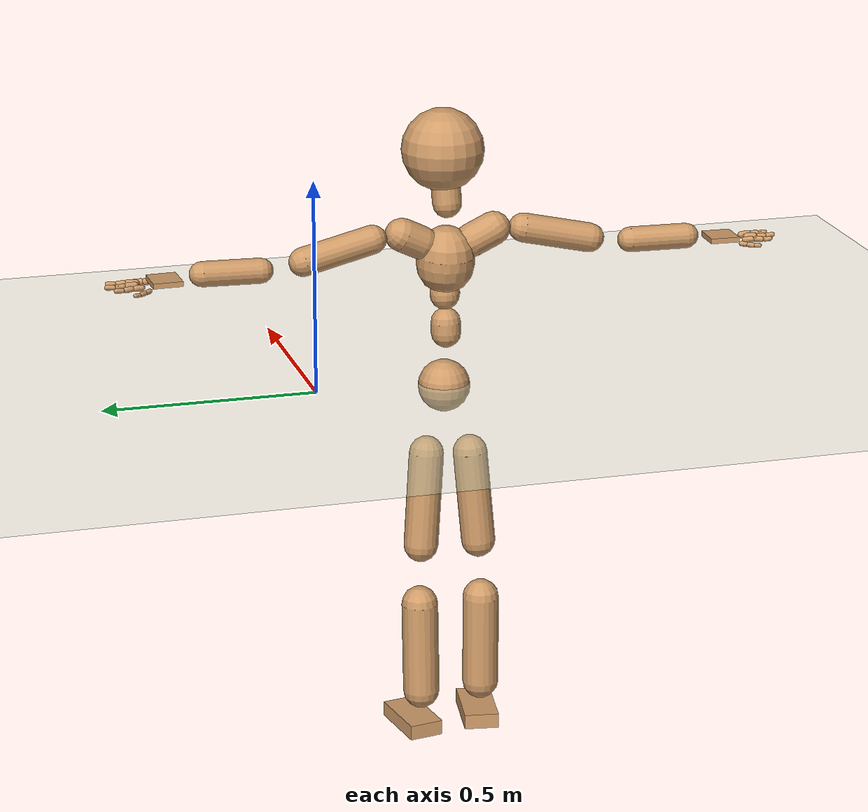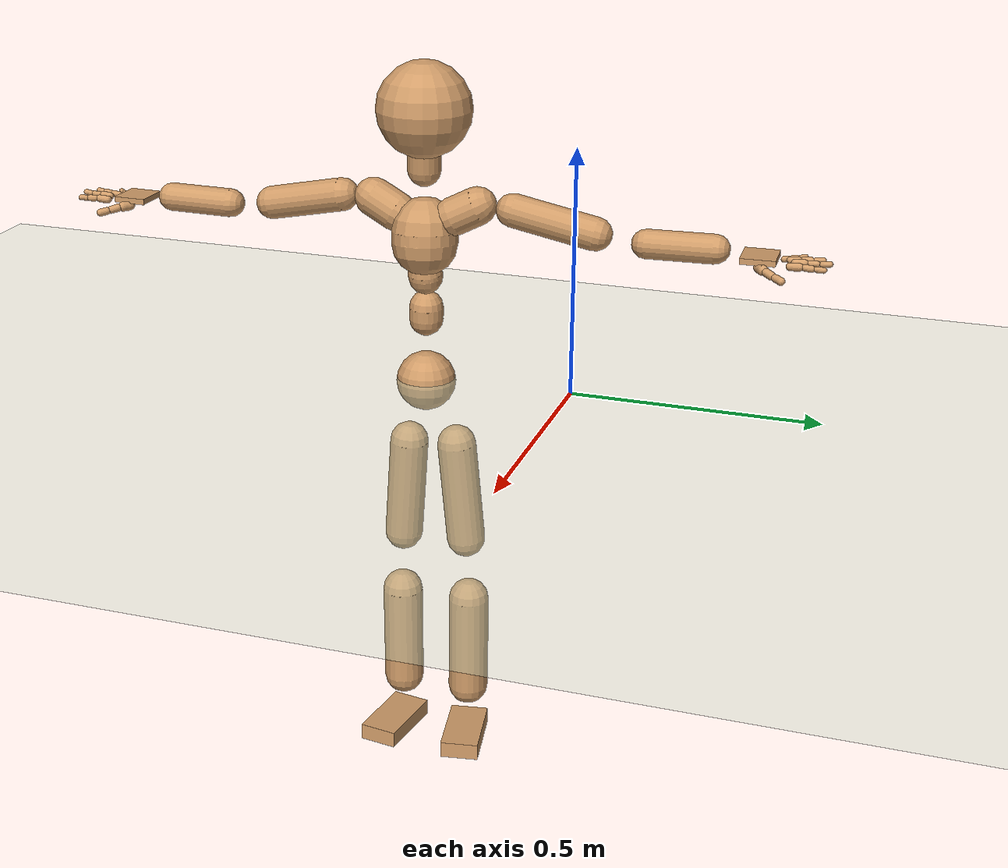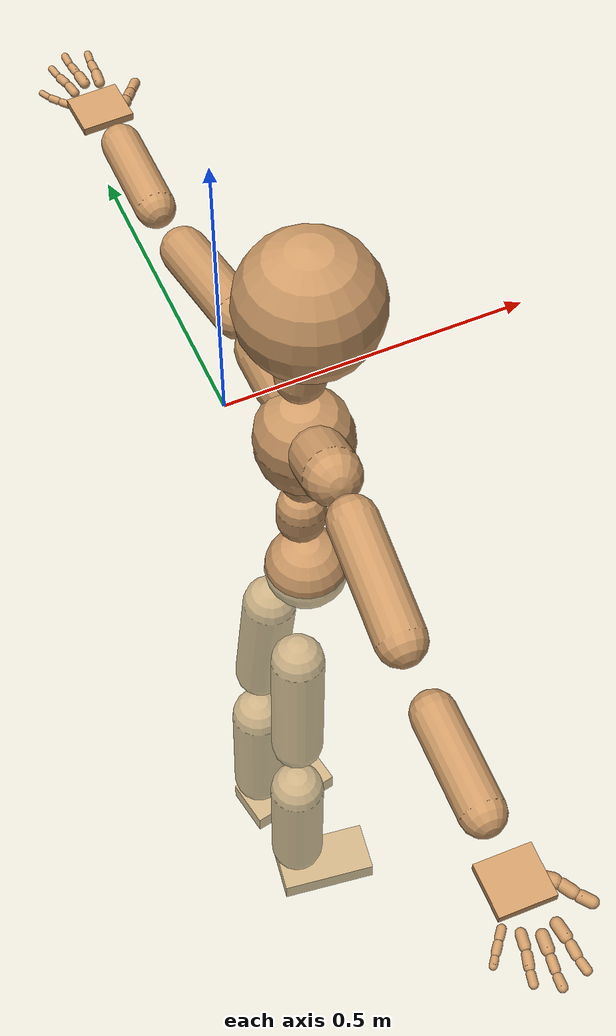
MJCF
<mujoco model="humanoid">
  <compiler coordinate="local" angle="radian"/>
  <default>
    <joint damping="0.0" armature="0.01" stiffness="0.0" limited="true"/>
    <geom conaffinity="1" condim="3" contype="7" margin="0.001" rgba="0.8 0.6 .4 1"/>
  </default>
  <asset>
    <texture type="skybox" builtin="gradient" rgb1=".4 .5 .6" rgb2="0 0 0" width="100" height="100"/>
    <texture builtin="flat" height="1278" mark="cross" markrgb="1 1 1" name="texgeom" random="0.01" rgb1="0.8 0.6 0.4" rgb2="0.8 0.6 0.4" type="cube" width="127"/>
    <texture builtin="checker" height="100" name="texplane" rgb1="0 0 0" rgb2="0.8 0.8 0.8" type="2d" width="100"/>
    <material name="MatPlane" reflectance="0.5" shininess="1" specular="1" texrepeat="60 60" texture="texplane"/>
    <material name="geom" texture="texgeom" texuniform="true"/>
  </asset>
  <worldbody>
    <light cutoff="100" diffuse="1 1 1" dir="-0 0 -1.3" directional="true" exponent="1" pos="0 0 1.3" specular=".1 .1 .1"/>
    <geom conaffinity="1" condim="3" name="floor" pos="0 0 0" rgba="0.8 0.9 0.8 1" size="100 100 .2" type="plane" material="MatPlane"/>
    <body name="Pelvis" pos="-0 -0.3068 -0.0101">
      <freejoint name="Pelvis"/>
      <geom type="sphere" contype="1" conaffinity="1" density="500" size="0.0611" pos="0.0000 0.0000 0.0000" name="Pelvis"/>
      <body name="L_Hip" pos="-0.0332 0.0476 -0.0758">
        <joint name="L_Hip_x" type="hinge" pos="0 0 0" axis="1 0 0" stiffness="800" damping="80" armature="0.02" range="-180.0000 180.0000"/>
        <joint name="L_Hip_y" type="hinge" pos="0 0 0" axis="0 1 0" stiffness="800" damping="80" armature="0.02" range="-180.0000 180.0000"/>
        <joint name="L_Hip_z" type="hinge" pos="0 0 0" axis="0 0 1" stiffness="800" damping="80" armature="0.02" range="-180.0000 180.0000"/>
        <geom type="capsule" contype="1" conaffinity="1" density="500" fromto="-0.0044 0.0056 -0.0745 -0.0177 0.0224 -0.2978" size="0.0405" name="L_Hip"/>
        <body name="L_Knee" pos="-0.0221 0.028 -0.3723">
          <joint name="L_Knee_x" type="hinge" pos="0 0 0" axis="1 0 0" stiffness="800" damping="80" armature="0.02" range="-180.0000 180.0000"/>
          <joint name="L_Knee_y" type="hinge" pos="0 0 0" axis="0 1 0" stiffness="800" damping="80" armature="0.02" range="-180.0000 180.0000"/>
          <joint name="L_Knee_z" type="hinge" pos="0 0 0" axis="0 0 1" stiffness="800" damping="80" armature="0.02" range="-180.0000 180.0000"/>
          <geom type="capsule" contype="1" conaffinity="1" density="500" fromto="-0.0016 -0.0009 -0.0734 -0.0066 -0.0034 -0.2937" size="0.043" name="L_Knee"/>
          <body name="L_Ankle" pos="-0.0082 -0.0043 -0.3671">
            <joint name="L_Ankle_x" type="hinge" pos="0 0 0" axis="1 0 0" stiffness="800" damping="80" armature="0.02" range="-180.0000 180.0000"/>
            <joint name="L_Ankle_y" type="hinge" pos="0 0 0" axis="0 1 0" stiffness="800" damping="80" armature="0.02" range="-180.0000 180.0000"/>
            <joint name="L_Ankle_z" type="hinge" pos="0 0 0" axis="0 0 1" stiffness="800" damping="80" armature="0.02" range="-180.0000 180.0000"/>
            <geom type="box" contype="1" conaffinity="1" density="500" pos="0.0505 0.0087 -0.0222" size="0.0781 0.0408 0.0178" quat="0.9964 0.0000 0.0000 0.0853" name="L_Ankle"/>
            <body name="L_Toe" pos="0.1011 0.0174 -0.0445">
              <joint name="L_Toe_x" type="hinge" pos="0 0 0" axis="1 0 0" stiffness="500" damping="50" armature="0.02" range="-180.0000 180.0000"/>
              <joint name="L_Toe_y" type="hinge" pos="0 0 0" axis="0 1 0" stiffness="500" damping="50" armature="0.02" range="-180.0000 180.0000"/>
              <joint name="L_Toe_z" type="hinge" pos="0 0 0" axis="0 0 1" stiffness="500" damping="50" armature="0.02" range="-180.0000 180.0000"/>
              <geom type="box" contype="1" conaffinity="1" density="500" pos="0.0000 0.0000 0.0235" size="0.0008 0.0021 0.001" quat="0.9957 0.0000 0.0000 0.0931" name="L_Toe"/>
            </body>
          </body>
        </body>
      </body>
      <body name="R_Hip" pos="-0.0346 -0.0466 -0.0833">
        <joint name="R_Hip_x" type="hinge" pos="0 0 0" axis="1 0 0" stiffness="800" damping="80" armature="0.02" range="-180.0000 180.0000"/>
        <joint name="R_Hip_y" type="hinge" pos="0 0 0" axis="0 1 0" stiffness="800" damping="80" armature="0.02" range="-180.0000 180.0000"/>
        <joint name="R_Hip_z" type="hinge" pos="0 0 0" axis="0 0 1" stiffness="800" damping="80" armature="0.02" range="-180.0000 180.0000"/>
        <geom type="capsule" contype="1" conaffinity="1" density="500" fromto="-0.0035 -0.0061 -0.0734 -0.0141 -0.0244 -0.2935" size="0.0403" name="R_Hip"/>
        <body name="R_Knee" pos="-0.0176 -0.0305 -0.3669">
          <joint name="R_Knee_x" type="hinge" pos="0 0 0" axis="1 0 0" stiffness="800" damping="80" armature="0.02" range="-180.0000 180.0000"/>
          <joint name="R_Knee_y" type="hinge" pos="0 0 0" axis="0 1 0" stiffness="800" damping="80" armature="0.02" range="-180.0000 180.0000"/>
          <joint name="R_Knee_z" type="hinge" pos="0 0 0" axis="0 0 1" stiffness="800" damping="80" armature="0.02" range="-180.0000 180.0000"/>
          <geom type="capsule" contype="1" conaffinity="1" density="500" fromto="-0.0006 0.0002 -0.0719 -0.0024 0.0006 -0.2874" size="0.0431" name="R_Knee"/>
          <body name="R_Ankle" pos="-0.003 0.0008 -0.3593">
            <joint name="R_Ankle_x" type="hinge" pos="0 0 0" axis="1 0 0" stiffness="800" damping="80" armature="0.02" range="-180.0000 180.0000"/>
            <joint name="R_Ankle_y" type="hinge" pos="0 0 0" axis="0 1 0" stiffness="800" damping="80" armature="0.02" range="-180.0000 180.0000"/>
            <joint name="R_Ankle_z" type="hinge" pos="0 0 0" axis="0 0 1" stiffness="800" damping="80" armature="0.02" range="-180.0000 180.0000"/>
            <geom type="box" contype="1" conaffinity="1" density="500" pos="0.0471 -0.0070 -0.0243" size="0.0781 0.0408 0.0178" quat="0.9973 0.0000 0.0000 -0.0741" name="R_Ankle"/>
            <body name="R_Toe" pos="0.0943 -0.0141 -0.0486">
              <joint name="R_Toe_x" type="hinge" pos="0 0 0" axis="1 0 0" stiffness="500" damping="50" armature="0.02" range="-180.0000 180.0000"/>
              <joint name="R_Toe_y" type="hinge" pos="0 0 0" axis="0 1 0" stiffness="500" damping="50" armature="0.02" range="-180.0000 180.0000"/>
              <joint name="R_Toe_z" type="hinge" pos="0 0 0" axis="0 0 1" stiffness="500" damping="50" armature="0.02" range="-180.0000 180.0000"/>
              <geom type="box" contype="1" conaffinity="1" density="500" pos="0.0000 0.0000 0.0256" size="0.0008 0.0021 0.001" quat="0.9981 0.0000 0.0000 -0.0624" name="R_Toe"/>
            </body>
          </body>
        </body>
      </body>
      <body name="Torso" pos="-0.0108 -0.0031 0.0822">
        <joint name="Torso_x" type="hinge" pos="0 0 0" axis="1 0 0" stiffness="1000" damping="100" armature="0.02" range="-180.0000 180.0000"/>
        <joint name="Torso_y" type="hinge" pos="0 0 0" axis="0 1 0" stiffness="1000" damping="100" armature="0.02" range="-180.0000 180.0000"/>
        <joint name="Torso_z" type="hinge" pos="0 0 0" axis="0 0 1" stiffness="1000" damping="100" armature="0.02" range="-180.0000 180.0000"/>
        <geom type="capsule" contype="1" conaffinity="1" density="500" fromto="0.0032 0.0016 0.0733 0.0022 0.0010 0.0489" size="0.0349" name="Torso"/>
        <body name="Spine" pos="0.0054 0.0026 0.1222">
          <joint name="Spine_x" type="hinge" pos="0 0 0" axis="1 0 0" stiffness="1000" damping="100" armature="0.02" range="-180.0000 180.0000"/>
          <joint name="Spine_y" type="hinge" pos="0 0 0" axis="0 1 0" stiffness="1000" damping="100" armature="0.02" range="-180.0000 180.0000"/>
          <joint name="Spine_z" type="hinge" pos="0 0 0" axis="0 0 1" stiffness="1000" damping="100" armature="0.02" range="-180.0000 180.0000"/>
          <geom type="capsule" contype="1" conaffinity="1" density="500" fromto="0.0044 -0.0003 0.0260 0.0029 -0.0002 0.0173" size="0.035" name="Spine"/>
          <body name="Chest" pos="0.0074 -0.0005 0.0433">
            <joint name="Chest_x" type="hinge" pos="0 0 0" axis="1 0 0" stiffness="1000" damping="100" armature="0.02" range="-180.0000 180.0000"/>
            <joint name="Chest_y" type="hinge" pos="0 0 0" axis="0 1 0" stiffness="1000" damping="100" armature="0.02" range="-180.0000 180.0000"/>
            <joint name="Chest_z" type="hinge" pos="0 0 0" axis="0 0 1" stiffness="1000" damping="100" armature="0.02" range="-180.0000 180.0000"/>
            <geom type="capsule" contype="1" conaffinity="1" density="500" fromto="-0.0057 -0.0013 0.0697 -0.0038 -0.0008 0.0465" size="0.0676" name="Chest"/>
            <body name="Neck" pos="-0.0135 -0.0044 0.1618">
              <joint name="Neck_x" type="hinge" pos="0 0 0" axis="1 0 0" stiffness="500" damping="50" armature="0.02" range="-180.0000 180.0000"/>
              <joint name="Neck_y" type="hinge" pos="0 0 0" axis="0 1 0" stiffness="500" damping="50" armature="0.02" range="-180.0000 180.0000"/>
              <joint name="Neck_z" type="hinge" pos="0 0 0" axis="0 0 1" stiffness="500" damping="50" armature="0.02" range="-180.0000 180.0000"/>
              <geom type="capsule" contype="1" conaffinity="1" density="500" fromto="0.0037 0.0015 0.0308 0.0150 0.0061 0.1231" size="0.0339" name="Neck"/>
              <body name="Head" pos="0.0187 0.0076 0.1539">
                <joint name="Head_x" type="hinge" pos="0 0 0" axis="1 0 0" stiffness="500" damping="50" armature="0.02" range="-180.0000 180.0000"/>
                <joint name="Head_y" type="hinge" pos="0 0 0" axis="0 1 0" stiffness="500" damping="50" armature="0.02" range="-180.0000 180.0000"/>
                <joint name="Head_z" type="hinge" pos="0 0 0" axis="0 0 1" stiffness="500" damping="50" armature="0.02" range="-180.0000 180.0000"/>
                <geom type="sphere" contype="1" conaffinity="1" density="500" size="0.0954" pos="0.0000 0.0000 0.0000" name="Head"/>
              </body>
            </body>
            <body name="L_Thorax" pos="-0.0056 0.0417 0.095">
              <joint name="L_Thorax_x" type="hinge" pos="0 0 0" axis="1 0 0" stiffness="500" damping="50" armature="0.02" range="-180.0000 180.0000"/>
              <joint name="L_Thorax_y" type="hinge" pos="0 0 0" axis="0 1 0" stiffness="500" damping="50" armature="0.02" range="-180.0000 180.0000"/>
              <joint name="L_Thorax_z" type="hinge" pos="0 0 0" axis="0 0 1" stiffness="500" damping="50" armature="0.02" range="-180.0000 180.0000"/>
              <geom type="capsule" contype="1" conaffinity="1" density="500" fromto="-0.0022 0.0160 0.0080 -0.0089 0.0641 0.0322" size="0.0387" name="L_Thorax"/>
              <body name="L_Shoulder" pos="-0.0112 0.0801 0.0402">
                <joint name="L_Shoulder_x" type="hinge" pos="0 0 0" axis="1 0 0" stiffness="500" damping="50" armature="0.02" range="-180.0000 180.0000"/>
                <joint name="L_Shoulder_y" type="hinge" pos="0 0 0" axis="0 1 0" stiffness="500" damping="50" armature="0.02" range="-180.0000 180.0000"/>
                <joint name="L_Shoulder_z" type="hinge" pos="0 0 0" axis="0 0 1" stiffness="500" damping="50" armature="0.02" range="-180.0000 180.0000"/>
                <geom type="capsule" contype="1" conaffinity="1" density="500" fromto="-0.0042 0.0548 -0.0120 -0.0169 0.2191 -0.0480" size="0.0336" name="L_Shoulder"/>
                <body name="L_Elbow" pos="-0.0211 0.2739 -0.0599">
                  <joint name="L_Elbow_x" type="hinge" pos="0 0 0" axis="1 0 0" stiffness="500" damping="50" armature="0.02" range="-720.0000 720.0000"/>
                  <joint name="L_Elbow_y" type="hinge" pos="0 0 0" axis="0 1 0" stiffness="500" damping="50" armature="0.02" range="-720.0000 720.0000"/>
                  <joint name="L_Elbow_z" type="hinge" pos="0 0 0" axis="0 0 1" stiffness="500" damping="50" armature="0.02" range="-720.0000 720.0000"/>
                  <geom type="capsule" contype="1" conaffinity="1" density="500" fromto="-0.0001 0.0449 0.0009 -0.0004 0.1797 0.0035" size="0.0289" name="L_Elbow"/>
                  <body name="L_Wrist" pos="-0.0005 0.2246 0.0044">
                    <joint name="L_Wrist_x" type="hinge" pos="0 0 0" axis="1 0 0" stiffness="300" damping="30" armature="0.02" range="-180.0000 180.0000"/>
                    <joint name="L_Wrist_y" type="hinge" pos="0 0 0" axis="0 1 0" stiffness="300" damping="30" armature="0.02" range="-180.0000 180.0000"/>
                    <joint name="L_Wrist_z" type="hinge" pos="0 0 0" axis="0 0 1" stiffness="300" damping="30" armature="0.02" range="-180.0000 180.0000"/>
                    <geom type="box" contype="1" conaffinity="1" density="500" pos="-0.0015 0.0405 -0.0084" size="0.0341 0.0381 0.0059" quat="0.7204 0.0000 0.0000 -0.6936" name="L_Wrist"/>
                    <body name="L_Index1" pos="0.0187 0.0949 -0.0156">
                      <joint name="L_Index1_x" type="hinge" pos="0 0 0" axis="1 0 0" stiffness="100" damping="10" armature="0.02" range="-180.0000 180.0000"/>
                      <joint name="L_Index1_y" type="hinge" pos="0 0 0" axis="0 1 0" stiffness="100" damping="10" armature="0.02" range="-180.0000 180.0000"/>
                      <joint name="L_Index1_z" type="hinge" pos="0 0 0" axis="0 0 1" stiffness="100" damping="10" armature="0.02" range="-180.0000 180.0000"/>
                      <geom type="capsule" contype="1" conaffinity="1" density="500" fromto="0.0005 0.0060 0.0004 0.0021 0.0238 0.0017" size="0.0078" name="L_Index1"/>
                      <body name="L_Index2" pos="0.0026 0.0298 0.0021">
                        <joint name="L_Index2_x" type="hinge" pos="0 0 0" axis="1 0 0" stiffness="100" damping="10" armature="0.02" range="-180.0000 180.0000"/>
                        <joint name="L_Index2_y" type="hinge" pos="0 0 0" axis="0 1 0" stiffness="100" damping="10" armature="0.02" range="-180.0000 180.0000"/>
                        <joint name="L_Index2_z" type="hinge" pos="0 0 0" axis="0 0 1" stiffness="100" damping="10" armature="0.02" range="-180.0000 180.0000"/>
                        <geom type="capsule" contype="1" conaffinity="1" density="500" fromto="0.0001 0.0043 -0.0003 0.0004 0.0170 -0.0011" size="0.0066" name="L_Index2"/>
                        <body name="L_Index3" pos="0.0005 0.0213 -0.0014">
                          <joint name="L_Index3_x" type="hinge" pos="0 0 0" axis="1 0 0" stiffness="100" damping="10" armature="0.02" range="-180.0000 180.0000"/>
                          <joint name="L_Index3_y" type="hinge" pos="0 0 0" axis="0 1 0" stiffness="100" damping="10" armature="0.02" range="-180.0000 180.0000"/>
                          <joint name="L_Index3_z" type="hinge" pos="0 0 0" axis="0 0 1" stiffness="100" damping="10" armature="0.02" range="-180.0000 180.0000"/>
                          <geom type="capsule" contype="1" conaffinity="1" density="500" fromto="0.0005 0.0047 0.0001 0.0020 0.0186 0.0005" size="0.0057" name="L_Index3"/>
                        </body>
                      </body>
                    </body>
                    <body name="L_Middle1" pos="-0.0012 0.1013 -0.0138">
                      <joint name="L_Middle1_x" type="hinge" pos="0 0 0" axis="1 0 0" stiffness="100" damping="10" armature="0.02" range="-180.0000 180.0000"/>
                      <joint name="L_Middle1_y" type="hinge" pos="0 0 0" axis="0 1 0" stiffness="100" damping="10" armature="0.02" range="-180.0000 180.0000"/>
                      <joint name="L_Middle1_z" type="hinge" pos="0 0 0" axis="0 0 1" stiffness="100" damping="10" armature="0.02" range="-180.0000 180.0000"/>
                      <geom type="capsule" contype="1" conaffinity="1" density="500" fromto="-0.0007 0.0057 0.0002 -0.0030 0.0227 0.0007" size="0.0078" name="L_Middle1"/>
                      <body name="L_Middle2" pos="-0.0037 0.0283 0.0008">
                        <joint name="L_Middle2_x" type="hinge" pos="0 0 0" axis="1 0 0" stiffness="100" damping="10" armature="0.02" range="-180.0000 180.0000"/>
                        <joint name="L_Middle2_y" type="hinge" pos="0 0 0" axis="0 1 0" stiffness="100" damping="10" armature="0.02" range="-180.0000 180.0000"/>
                        <joint name="L_Middle2_z" type="hinge" pos="0 0 0" axis="0 0 1" stiffness="100" damping="10" armature="0.02" range="-180.0000 180.0000"/>
                        <geom type="capsule" contype="1" conaffinity="1" density="500" fromto="-0.0007 0.0045 -0.0001 -0.0028 0.0178 -0.0003" size="0.0061" name="L_Middle2"/>
                        <body name="L_Middle3" pos="-0.0036 0.0223 -0.0004">
                          <joint name="L_Middle3_x" type="hinge" pos="0 0 0" axis="1 0 0" stiffness="100" damping="10" armature="0.02" range="-180.0000 180.0000"/>
                          <joint name="L_Middle3_y" type="hinge" pos="0 0 0" axis="0 1 0" stiffness="100" damping="10" armature="0.02" range="-180.0000 180.0000"/>
                          <joint name="L_Middle3_z" type="hinge" pos="0 0 0" axis="0 0 1" stiffness="100" damping="10" armature="0.02" range="-180.0000 180.0000"/>
                          <geom type="capsule" contype="1" conaffinity="1" density="500" fromto="-0.0003 0.0049 0.0003 -0.0012 0.0194 0.0013" size="0.0057" name="L_Middle3"/>
                        </body>
                      </body>
                    </body>
                    <body name="L_Pinky1" pos="-0.0354 0.0778 -0.0193">
                      <joint name="L_Pinky1_x" type="hinge" pos="0 0 0" axis="1 0 0" stiffness="100" damping="10" armature="0.02" range="-180.0000 180.0000"/>
                      <joint name="L_Pinky1_y" type="hinge" pos="0 0 0" axis="0 1 0" stiffness="100" damping="10" armature="0.02" range="-180.0000 180.0000"/>
                      <joint name="L_Pinky1_z" type="hinge" pos="0 0 0" axis="0 0 1" stiffness="100" damping="10" armature="0.02" range="-180.0000 180.0000"/>
                      <geom type="capsule" contype="1" conaffinity="1" density="500" fromto="-0.0022 0.0027 -0.0000 -0.0090 0.0108 -0.0001" size="0.0057" name="L_Pinky1"/>
                      <body name="L_Pinky2" pos="-0.0112 0.0135 -0.0001">
                        <joint name="L_Pinky2_x" type="hinge" pos="0 0 0" axis="1 0 0" stiffness="100" damping="10" armature="0.02" range="-180.0000 180.0000"/>
                        <joint name="L_Pinky2_y" type="hinge" pos="0 0 0" axis="0 1 0" stiffness="100" damping="10" armature="0.02" range="-180.0000 180.0000"/>
                        <joint name="L_Pinky2_z" type="hinge" pos="0 0 0" axis="0 0 1" stiffness="100" damping="10" armature="0.02" range="-180.0000 180.0000"/>
                        <geom type="capsule" contype="1" conaffinity="1" density="500" fromto="-0.0022 0.0028 -0.0001 -0.0090 0.0111 -0.0003" size="0.0056" name="L_Pinky2"/>
                        <body name="L_Pinky3" pos="-0.0112 0.0139 -0.0004">
                          <joint name="L_Pinky3_x" type="hinge" pos="0 0 0" axis="1 0 0" stiffness="100" damping="10" armature="0.02" range="-180.0000 180.0000"/>
                          <joint name="L_Pinky3_y" type="hinge" pos="0 0 0" axis="0 1 0" stiffness="100" damping="10" armature="0.02" range="-180.0000 180.0000"/>
                          <joint name="L_Pinky3_z" type="hinge" pos="0 0 0" axis="0 0 1" stiffness="100" damping="10" armature="0.02" range="-180.0000 180.0000"/>
                          <geom type="capsule" contype="1" conaffinity="1" density="500" fromto="-0.0018 0.0032 0.0003 -0.0074 0.0127 0.0013" size="0.0046" name="L_Pinky3"/>
                        </body>
                      </body>
                    </body>
                    <body name="L_Ring1" pos="-0.0209 0.09 -0.0154">
                      <joint name="L_Ring1_x" type="hinge" pos="0 0 0" axis="1 0 0" stiffness="100" damping="10" armature="0.02" range="-180.0000 180.0000"/>
                      <joint name="L_Ring1_y" type="hinge" pos="0 0 0" axis="0 1 0" stiffness="100" damping="10" armature="0.02" range="-180.0000 180.0000"/>
                      <joint name="L_Ring1_z" type="hinge" pos="0 0 0" axis="0 0 1" stiffness="100" damping="10" armature="0.02" range="-180.0000 180.0000"/>
                      <geom type="capsule" contype="1" conaffinity="1" density="500" fromto="-0.0010 0.0051 0.0003 -0.0040 0.0204 0.0012" size="0.0068" name="L_Ring1"/>
                      <body name="L_Ring2" pos="-0.005 0.0255 0.0015">
                        <joint name="L_Ring2_x" type="hinge" pos="0 0 0" axis="1 0 0" stiffness="100" damping="10" armature="0.02" range="-180.0000 180.0000"/>
                        <joint name="L_Ring2_y" type="hinge" pos="0 0 0" axis="0 1 0" stiffness="100" damping="10" armature="0.02" range="-180.0000 180.0000"/>
                        <joint name="L_Ring2_z" type="hinge" pos="0 0 0" axis="0 0 1" stiffness="100" damping="10" armature="0.02" range="-180.0000 180.0000"/>
                        <geom type="capsule" contype="1" conaffinity="1" density="500" fromto="-0.0013 0.0042 -0.0001 -0.0053 0.0170 -0.0005" size="0.0065" name="L_Ring2"/>
                        <body name="L_Ring3" pos="-0.0066 0.0212 -0.0006">
                          <joint name="L_Ring3_x" type="hinge" pos="0 0 0" axis="1 0 0" stiffness="100" damping="10" armature="0.02" range="-180.0000 180.0000"/>
                          <joint name="L_Ring3_y" type="hinge" pos="0 0 0" axis="0 1 0" stiffness="100" damping="10" armature="0.02" range="-180.0000 180.0000"/>
                          <joint name="L_Ring3_z" type="hinge" pos="0 0 0" axis="0 0 1" stiffness="100" damping="10" armature="0.02" range="-180.0000 180.0000"/>
                          <geom type="capsule" contype="1" conaffinity="1" density="500" fromto="-0.0009 0.0046 0.0003 -0.0037 0.0186 0.0011" size="0.0053" name="L_Ring3"/>
                        </body>
                      </body>
                    </body>
                    <body name="L_Thumb1" pos="0.0234 0.0406 -0.0202">
                      <joint name="L_Thumb1_x" type="hinge" pos="0 0 0" axis="1 0 0" stiffness="100" damping="10" armature="0.02" range="-180.0000 180.0000"/>
                      <joint name="L_Thumb1_y" type="hinge" pos="0 0 0" axis="0 1 0" stiffness="100" damping="10" armature="0.02" range="-180.0000 180.0000"/>
                      <joint name="L_Thumb1_z" type="hinge" pos="0 0 0" axis="0 0 1" stiffness="100" damping="10" armature="0.02" range="-180.0000 180.0000"/>
                      <geom type="capsule" contype="1" conaffinity="1" density="500" fromto="0.0044 0.0033 -0.0001 0.0175 0.0132 -0.0002" size="0.0101" name="L_Thumb1"/>
                      <body name="L_Thumb2" pos="0.0218 0.0165 -0.0003">
                        <joint name="L_Thumb2_x" type="hinge" pos="0 0 0" axis="1 0 0" stiffness="100" damping="10" armature="0.02" range="-180.0000 180.0000"/>
                        <joint name="L_Thumb2_y" type="hinge" pos="0 0 0" axis="0 1 0" stiffness="100" damping="10" armature="0.02" range="-180.0000 180.0000"/>
                        <joint name="L_Thumb2_z" type="hinge" pos="0 0 0" axis="0 0 1" stiffness="100" damping="10" armature="0.02" range="-180.0000 180.0000"/>
                        <geom type="capsule" contype="1" conaffinity="1" density="500" fromto="0.0027 0.0039 -0.0011 0.0108 0.0154 -0.0044" size="0.0081" name="L_Thumb2"/>
                        <body name="L_Thumb3" pos="0.0135 0.0193 -0.0054">
                          <joint name="L_Thumb3_x" type="hinge" pos="0 0 0" axis="1 0 0" stiffness="100" damping="10" armature="0.02" range="-180.0000 180.0000"/>
                          <joint name="L_Thumb3_y" type="hinge" pos="0 0 0" axis="0 1 0" stiffness="100" damping="10" armature="0.02" range="-180.0000 180.0000"/>
                          <joint name="L_Thumb3_z" type="hinge" pos="0 0 0" axis="0 0 1" stiffness="100" damping="10" armature="0.02" range="-180.0000 180.0000"/>
                          <geom type="capsule" contype="1" conaffinity="1" density="500" fromto="0.0031 0.0043 -0.0007 0.0124 0.0170 -0.0028" size="0.0077" name="L_Thumb3"/>
                        </body>
                      </body>
                    </body>
                  </body>
                </body>
              </body>
            </body>
            <body name="R_Thorax" pos="-0.0093 -0.0436 0.0917">
              <joint name="R_Thorax_x" type="hinge" pos="0 0 0" axis="1 0 0" stiffness="500" damping="50" armature="0.02" range="-180.0000 180.0000"/>
              <joint name="R_Thorax_y" type="hinge" pos="0 0 0" axis="0 1 0" stiffness="500" damping="50" armature="0.02" range="-180.0000 180.0000"/>
              <joint name="R_Thorax_z" type="hinge" pos="0 0 0" axis="0 0 1" stiffness="500" damping="50" armature="0.02" range="-180.0000 180.0000"/>
              <geom type="capsule" contype="1" conaffinity="1" density="500" fromto="-0.0015 -0.0172 0.0087 -0.0061 -0.0686 0.0348" size="0.0393" name="R_Thorax"/>
              <body name="R_Shoulder" pos="-0.0076 -0.0858 0.0435">
                <joint name="R_Shoulder_x" type="hinge" pos="0 0 0" axis="1 0 0" stiffness="500" damping="50" armature="0.02" range="-180.0000 180.0000"/>
                <joint name="R_Shoulder_y" type="hinge" pos="0 0 0" axis="0 1 0" stiffness="500" damping="50" armature="0.02" range="-180.0000 180.0000"/>
                <joint name="R_Shoulder_z" type="hinge" pos="0 0 0" axis="0 0 1" stiffness="500" damping="50" armature="0.02" range="-180.0000 180.0000"/>
                <geom type="capsule" contype="1" conaffinity="1" density="500" fromto="-0.0029 -0.0527 -0.0112 -0.0117 -0.2109 -0.0448" size="0.0339" name="R_Shoulder"/>
                <body name="R_Elbow" pos="-0.0146 -0.2636 -0.0559">
                  <joint name="R_Elbow_x" type="hinge" pos="0 0 0" axis="1 0 0" stiffness="500" damping="50" armature="0.02" range="-720.0000 720.0000"/>
                  <joint name="R_Elbow_y" type="hinge" pos="0 0 0" axis="0 1 0" stiffness="500" damping="50" armature="0.02" range="-720.0000 720.0000"/>
                  <joint name="R_Elbow_z" type="hinge" pos="0 0 0" axis="0 0 1" stiffness="500" damping="50" armature="0.02" range="-720.0000 720.0000"/>
                  <geom type="capsule" contype="1" conaffinity="1" density="500" fromto="-0.0016 -0.0453 -0.0000 -0.0062 -0.1811 -0.0001" size="0.0292" name="R_Elbow"/>
                  <body name="R_Wrist" pos="-0.0078 -0.2263 -0.0001">
                    <joint name="R_Wrist_x" type="hinge" pos="0 0 0" axis="1 0 0" stiffness="300" damping="30" armature="0.02" range="-180.0000 180.0000"/>
                    <joint name="R_Wrist_y" type="hinge" pos="0 0 0" axis="0 1 0" stiffness="300" damping="30" armature="0.02" range="-180.0000 180.0000"/>
                    <joint name="R_Wrist_z" type="hinge" pos="0 0 0" axis="0 0 1" stiffness="300" damping="30" armature="0.02" range="-180.0000 180.0000"/>
                    <geom type="box" contype="1" conaffinity="1" density="500" pos="-0.0011 -0.0399 -0.0082" size="0.0341 0.0359 0.006" quat="0.7167 0.0000 0.0000 0.6973" name="R_Wrist"/>
                    <body name="R_Index1" pos="0.0196 -0.0938 -0.0151">
                      <joint name="R_Index1_x" type="hinge" pos="0 0 0" axis="1 0 0" stiffness="100" damping="10" armature="0.02" range="-180.0000 180.0000"/>
                      <joint name="R_Index1_y" type="hinge" pos="0 0 0" axis="0 1 0" stiffness="100" damping="10" armature="0.02" range="-180.0000 180.0000"/>
                      <joint name="R_Index1_z" type="hinge" pos="0 0 0" axis="0 0 1" stiffness="100" damping="10" armature="0.02" range="-180.0000 180.0000"/>
                      <geom type="capsule" contype="1" conaffinity="1" density="500" fromto="0.0005 -0.0060 0.0004 0.0021 -0.0238 0.0017" size="0.0078" name="R_Index1"/>
                      <body name="R_Index2" pos="0.0026 -0.0298 0.0021">
                        <joint name="R_Index2_x" type="hinge" pos="0 0 0" axis="1 0 0" stiffness="100" damping="10" armature="0.02" range="-180.0000 180.0000"/>
                        <joint name="R_Index2_y" type="hinge" pos="0 0 0" axis="0 1 0" stiffness="100" damping="10" armature="0.02" range="-180.0000 180.0000"/>
                        <joint name="R_Index2_z" type="hinge" pos="0 0 0" axis="0 0 1" stiffness="100" damping="10" armature="0.02" range="-180.0000 180.0000"/>
                        <geom type="capsule" contype="1" conaffinity="1" density="500" fromto="0.0001 -0.0043 -0.0003 0.0004 -0.0170 -0.0011" size="0.0066" name="R_Index2"/>
                        <body name="R_Index3" pos="0.0005 -0.0213 -0.0014">
                          <joint name="R_Index3_x" type="hinge" pos="0 0 0" axis="1 0 0" stiffness="100" damping="10" armature="0.02" range="-180.0000 180.0000"/>
                          <joint name="R_Index3_y" type="hinge" pos="0 0 0" axis="0 1 0" stiffness="100" damping="10" armature="0.02" range="-180.0000 180.0000"/>
                          <joint name="R_Index3_z" type="hinge" pos="0 0 0" axis="0 0 1" stiffness="100" damping="10" armature="0.02" range="-180.0000 180.0000"/>
                          <geom type="capsule" contype="1" conaffinity="1" density="500" fromto="0.0005 -0.0039 0.0001 0.0020 -0.0154 0.0005" size="0.0059" name="R_Index3"/>
                        </body>
                      </body>
                    </body>
                    <body name="R_Middle1" pos="-0.0003 -0.1002 -0.0133">
                      <joint name="R_Middle1_x" type="hinge" pos="0 0 0" axis="1 0 0" stiffness="100" damping="10" armature="0.02" range="-180.0000 180.0000"/>
                      <joint name="R_Middle1_y" type="hinge" pos="0 0 0" axis="0 1 0" stiffness="100" damping="10" armature="0.02" range="-180.0000 180.0000"/>
                      <joint name="R_Middle1_z" type="hinge" pos="0 0 0" axis="0 0 1" stiffness="100" damping="10" armature="0.02" range="-180.0000 180.0000"/>
                      <geom type="capsule" contype="1" conaffinity="1" density="500" fromto="-0.0007 -0.0057 0.0002 -0.0030 -0.0227 0.0007" size="0.0078" name="R_Middle1"/>
                      <body name="R_Middle2" pos="-0.0037 -0.0283 0.0008">
                        <joint name="R_Middle2_x" type="hinge" pos="0 0 0" axis="1 0 0" stiffness="100" damping="10" armature="0.02" range="-180.0000 180.0000"/>
                        <joint name="R_Middle2_y" type="hinge" pos="0 0 0" axis="0 1 0" stiffness="100" damping="10" armature="0.02" range="-180.0000 180.0000"/>
                        <joint name="R_Middle2_z" type="hinge" pos="0 0 0" axis="0 0 1" stiffness="100" damping="10" armature="0.02" range="-180.0000 180.0000"/>
                        <geom type="capsule" contype="1" conaffinity="1" density="500" fromto="-0.0007 -0.0045 -0.0001 -0.0028 -0.0178 -0.0003" size="0.0061" name="R_Middle2"/>
                        <body name="R_Middle3" pos="-0.0036 -0.0223 -0.0004">
                          <joint name="R_Middle3_x" type="hinge" pos="0 0 0" axis="1 0 0" stiffness="100" damping="10" armature="0.02" range="-180.0000 180.0000"/>
                          <joint name="R_Middle3_y" type="hinge" pos="0 0 0" axis="0 1 0" stiffness="100" damping="10" armature="0.02" range="-180.0000 180.0000"/>
                          <joint name="R_Middle3_z" type="hinge" pos="0 0 0" axis="0 0 1" stiffness="100" damping="10" armature="0.02" range="-180.0000 180.0000"/>
                          <geom type="capsule" contype="1" conaffinity="1" density="500" fromto="-0.0003 -0.0041 0.0003 -0.0012 -0.0162 0.0013" size="0.006" name="R_Middle3"/>
                        </body>
                      </body>
                    </body>
                    <body name="R_Pinky1" pos="-0.0345 -0.0768 -0.0188">
                      <joint name="R_Pinky1_x" type="hinge" pos="0 0 0" axis="1 0 0" stiffness="100" damping="10" armature="0.02" range="-180.0000 180.0000"/>
                      <joint name="R_Pinky1_y" type="hinge" pos="0 0 0" axis="0 1 0" stiffness="100" damping="10" armature="0.02" range="-180.0000 180.0000"/>
                      <joint name="R_Pinky1_z" type="hinge" pos="0 0 0" axis="0 0 1" stiffness="100" damping="10" armature="0.02" range="-180.0000 180.0000"/>
                      <geom type="capsule" contype="1" conaffinity="1" density="500" fromto="-0.0022 -0.0027 -0.0000 -0.0090 -0.0108 -0.0001" size="0.0057" name="R_Pinky1"/>
                      <body name="R_Pinky2" pos="-0.0112 -0.0135 -0.0001">
                        <joint name="R_Pinky2_x" type="hinge" pos="0 0 0" axis="1 0 0" stiffness="100" damping="10" armature="0.02" range="-180.0000 180.0000"/>
                        <joint name="R_Pinky2_y" type="hinge" pos="0 0 0" axis="0 1 0" stiffness="100" damping="10" armature="0.02" range="-180.0000 180.0000"/>
                        <joint name="R_Pinky2_z" type="hinge" pos="0 0 0" axis="0 0 1" stiffness="100" damping="10" armature="0.02" range="-180.0000 180.0000"/>
                        <geom type="capsule" contype="1" conaffinity="1" density="500" fromto="-0.0022 -0.0028 -0.0001 -0.0090 -0.0111 -0.0003" size="0.0056" name="R_Pinky2"/>
                        <body name="R_Pinky3" pos="-0.0112 -0.0139 -0.0004">
                          <joint name="R_Pinky3_x" type="hinge" pos="0 0 0" axis="1 0 0" stiffness="100" damping="10" armature="0.02" range="-180.0000 180.0000"/>
                          <joint name="R_Pinky3_y" type="hinge" pos="0 0 0" axis="0 1 0" stiffness="100" damping="10" armature="0.02" range="-180.0000 180.0000"/>
                          <joint name="R_Pinky3_z" type="hinge" pos="0 0 0" axis="0 0 1" stiffness="100" damping="10" armature="0.02" range="-180.0000 180.0000"/>
                          <geom type="capsule" contype="1" conaffinity="1" density="500" fromto="-0.0018 -0.0024 0.0003 -0.0074 -0.0095 0.0013" size="0.0048" name="R_Pinky3"/>
                        </body>
                      </body>
                    </body>
                    <body name="R_Ring1" pos="-0.02 -0.0889 -0.0149">
                      <joint name="R_Ring1_x" type="hinge" pos="0 0 0" axis="1 0 0" stiffness="100" damping="10" armature="0.02" range="-180.0000 180.0000"/>
                      <joint name="R_Ring1_y" type="hinge" pos="0 0 0" axis="0 1 0" stiffness="100" damping="10" armature="0.02" range="-180.0000 180.0000"/>
                      <joint name="R_Ring1_z" type="hinge" pos="0 0 0" axis="0 0 1" stiffness="100" damping="10" armature="0.02" range="-180.0000 180.0000"/>
                      <geom type="capsule" contype="1" conaffinity="1" density="500" fromto="-0.0010 -0.0051 0.0003 -0.0040 -0.0204 0.0012" size="0.0068" name="R_Ring1"/>
                      <body name="R_Ring2" pos="-0.005 -0.0255 0.0015">
                        <joint name="R_Ring2_x" type="hinge" pos="0 0 0" axis="1 0 0" stiffness="100" damping="10" armature="0.02" range="-180.0000 180.0000"/>
                        <joint name="R_Ring2_y" type="hinge" pos="0 0 0" axis="0 1 0" stiffness="100" damping="10" armature="0.02" range="-180.0000 180.0000"/>
                        <joint name="R_Ring2_z" type="hinge" pos="0 0 0" axis="0 0 1" stiffness="100" damping="10" armature="0.02" range="-180.0000 180.0000"/>
                        <geom type="capsule" contype="1" conaffinity="1" density="500" fromto="-0.0013 -0.0042 -0.0001 -0.0053 -0.0170 -0.0005" size="0.0065" name="R_Ring2"/>
                        <body name="R_Ring3" pos="-0.0066 -0.0212 -0.0006">
                          <joint name="R_Ring3_x" type="hinge" pos="0 0 0" axis="1 0 0" stiffness="100" damping="10" armature="0.02" range="-180.0000 180.0000"/>
                          <joint name="R_Ring3_y" type="hinge" pos="0 0 0" axis="0 1 0" stiffness="100" damping="10" armature="0.02" range="-180.0000 180.0000"/>
                          <joint name="R_Ring3_z" type="hinge" pos="0 0 0" axis="0 0 1" stiffness="100" damping="10" armature="0.02" range="-180.0000 180.0000"/>
                          <geom type="capsule" contype="1" conaffinity="1" density="500" fromto="-0.0009 -0.0038 0.0003 -0.0037 -0.0154 0.0011" size="0.0055" name="R_Ring3"/>
                        </body>
                      </body>
                    </body>
                    <body name="R_Thumb1" pos="0.0243 -0.0395 -0.0197">
                      <joint name="R_Thumb1_x" type="hinge" pos="0 0 0" axis="1 0 0" stiffness="100" damping="10" armature="0.02" range="-180.0000 180.0000"/>
                      <joint name="R_Thumb1_y" type="hinge" pos="0 0 0" axis="0 1 0" stiffness="100" damping="10" armature="0.02" range="-180.0000 180.0000"/>
                      <joint name="R_Thumb1_z" type="hinge" pos="0 0 0" axis="0 0 1" stiffness="100" damping="10" armature="0.02" range="-180.0000 180.0000"/>
                      <geom type="capsule" contype="1" conaffinity="1" density="500" fromto="0.0044 -0.0033 -0.0001 0.0175 -0.0132 -0.0002" size="0.0101" name="R_Thumb1"/>
                      <body name="R_Thumb2" pos="0.0218 -0.0165 -0.0003">
                        <joint name="R_Thumb2_x" type="hinge" pos="0 0 0" axis="1 0 0" stiffness="100" damping="10" armature="0.02" range="-180.0000 180.0000"/>
                        <joint name="R_Thumb2_y" type="hinge" pos="0 0 0" axis="0 1 0" stiffness="100" damping="10" armature="0.02" range="-180.0000 180.0000"/>
                        <joint name="R_Thumb2_z" type="hinge" pos="0 0 0" axis="0 0 1" stiffness="100" damping="10" armature="0.02" range="-180.0000 180.0000"/>
                        <geom type="capsule" contype="1" conaffinity="1" density="500" fromto="0.0027 -0.0039 -0.0011 0.0108 -0.0154 -0.0044" size="0.0081" name="R_Thumb2"/>
                        <body name="R_Thumb3" pos="0.0135 -0.0193 -0.0054">
                          <joint name="R_Thumb3_x" type="hinge" pos="0 0 0" axis="1 0 0" stiffness="100" damping="10" armature="0.02" range="-180.0000 180.0000"/>
                          <joint name="R_Thumb3_y" type="hinge" pos="0 0 0" axis="0 1 0" stiffness="100" damping="10" armature="0.02" range="-180.0000 180.0000"/>
                          <joint name="R_Thumb3_z" type="hinge" pos="0 0 0" axis="0 0 1" stiffness="100" damping="10" armature="0.02" range="-180.0000 180.0000"/>
                          <geom type="capsule" contype="1" conaffinity="1" density="500" fromto="0.0031 -0.0035 -0.0007 0.0124 -0.0138 -0.0028" size="0.0079" name="R_Thumb3"/>
                        </body>
                      </body>
                    </body>
                  </body>
                </body>
              </body>
            </body>
          </body>
        </body>
      </body>
    </body>
  </worldbody>
  <actuator>
    <motor name="L_Hip_x" joint="L_Hip_x" gear="500"/>
    <motor name="L_Hip_y" joint="L_Hip_y" gear="500"/>
    <motor name="L_Hip_z" joint="L_Hip_z" gear="500"/>
    <motor name="L_Knee_x" joint="L_Knee_x" gear="500"/>
    <motor name="L_Knee_y" joint="L_Knee_y" gear="500"/>
    <motor name="L_Knee_z" joint="L_Knee_z" gear="500"/>
    <motor name="L_Ankle_x" joint="L_Ankle_x" gear="500"/>
    <motor name="L_Ankle_y" joint="L_Ankle_y" gear="500"/>
    <motor name="L_Ankle_z" joint="L_Ankle_z" gear="500"/>
    <motor name="L_Toe_x" joint="L_Toe_x" gear="500"/>
    <motor name="L_Toe_y" joint="L_Toe_y" gear="500"/>
    <motor name="L_Toe_z" joint="L_Toe_z" gear="500"/>
    <motor name="R_Hip_x" joint="R_Hip_x" gear="500"/>
    <motor name="R_Hip_y" joint="R_Hip_y" gear="500"/>
    <motor name="R_Hip_z" joint="R_Hip_z" gear="500"/>
    <motor name="R_Knee_x" joint="R_Knee_x" gear="500"/>
    <motor name="R_Knee_y" joint="R_Knee_y" gear="500"/>
    <motor name="R_Knee_z" joint="R_Knee_z" gear="500"/>
    <motor name="R_Ankle_x" joint="R_Ankle_x" gear="500"/>
    <motor name="R_Ankle_y" joint="R_Ankle_y" gear="500"/>
    <motor name="R_Ankle_z" joint="R_Ankle_z" gear="500"/>
    <motor name="R_Toe_x" joint="R_Toe_x" gear="500"/>
    <motor name="R_Toe_y" joint="R_Toe_y" gear="500"/>
    <motor name="R_Toe_z" joint="R_Toe_z" gear="500"/>
    <motor name="Torso_x" joint="Torso_x" gear="500"/>
    <motor name="Torso_y" joint="Torso_y" gear="500"/>
    <motor name="Torso_z" joint="Torso_z" gear="500"/>
    <motor name="Spine_x" joint="Spine_x" gear="500"/>
    <motor name="Spine_y" joint="Spine_y" gear="500"/>
    <motor name="Spine_z" joint="Spine_z" gear="500"/>
    <motor name="Chest_x" joint="Chest_x" gear="500"/>
    <motor name="Chest_y" joint="Chest_y" gear="500"/>
    <motor name="Chest_z" joint="Chest_z" gear="500"/>
    <motor name="Neck_x" joint="Neck_x" gear="500"/>
    <motor name="Neck_y" joint="Neck_y" gear="500"/>
    <motor name="Neck_z" joint="Neck_z" gear="500"/>
    <motor name="Head_x" joint="Head_x" gear="500"/>
    <motor name="Head_y" joint="Head_y" gear="500"/>
    <motor name="Head_z" joint="Head_z" gear="500"/>
    <motor name="L_Thorax_x" joint="L_Thorax_x" gear="500"/>
    <motor name="L_Thorax_y" joint="L_Thorax_y" gear="500"/>
    <motor name="L_Thorax_z" joint="L_Thorax_z" gear="500"/>
    <motor name="L_Shoulder_x" joint="L_Shoulder_x" gear="500"/>
    <motor name="L_Shoulder_y" joint="L_Shoulder_y" gear="500"/>
    <motor name="L_Shoulder_z" joint="L_Shoulder_z" gear="500"/>
    <motor name="L_Elbow_x" joint="L_Elbow_x" gear="500"/>
    <motor name="L_Elbow_y" joint="L_Elbow_y" gear="500"/>
    <motor name="L_Elbow_z" joint="L_Elbow_z" gear="500"/>
    <motor name="L_Wrist_x" joint="L_Wrist_x" gear="500"/>
    <motor name="L_Wrist_y" joint="L_Wrist_y" gear="500"/>
    <motor name="L_Wrist_z" joint="L_Wrist_z" gear="500"/>
    <motor name="L_Index1_x" joint="L_Index1_x" gear="500"/>
    <motor name="L_Index1_y" joint="L_Index1_y" gear="500"/>
    <motor name="L_Index1_z" joint="L_Index1_z" gear="500"/>
    <motor name="L_Index2_x" joint="L_Index2_x" gear="500"/>
    <motor name="L_Index2_y" joint="L_Index2_y" gear="500"/>
    <motor name="L_Index2_z" joint="L_Index2_z" gear="500"/>
    <motor name="L_Index3_x" joint="L_Index3_x" gear="500"/>
    <motor name="L_Index3_y" joint="L_Index3_y" gear="500"/>
    <motor name="L_Index3_z" joint="L_Index3_z" gear="500"/>
    <motor name="L_Middle1_x" joint="L_Middle1_x" gear="500"/>
    <motor name="L_Middle1_y" joint="L_Middle1_y" gear="500"/>
    <motor name="L_Middle1_z" joint="L_Middle1_z" gear="500"/>
    <motor name="L_Middle2_x" joint="L_Middle2_x" gear="500"/>
    <motor name="L_Middle2_y" joint="L_Middle2_y" gear="500"/>
    <motor name="L_Middle2_z" joint="L_Middle2_z" gear="500"/>
    <motor name="L_Middle3_x" joint="L_Middle3_x" gear="500"/>
    <motor name="L_Middle3_y" joint="L_Middle3_y" gear="500"/>
    <motor name="L_Middle3_z" joint="L_Middle3_z" gear="500"/>
    <motor name="L_Pinky1_x" joint="L_Pinky1_x" gear="500"/>
    <motor name="L_Pinky1_y" joint="L_Pinky1_y" gear="500"/>
    <motor name="L_Pinky1_z" joint="L_Pinky1_z" gear="500"/>
    <motor name="L_Pinky2_x" joint="L_Pinky2_x" gear="500"/>
    <motor name="L_Pinky2_y" joint="L_Pinky2_y" gear="500"/>
    <motor name="L_Pinky2_z" joint="L_Pinky2_z" gear="500"/>
    <motor name="L_Pinky3_x" joint="L_Pinky3_x" gear="500"/>
    <motor name="L_Pinky3_y" joint="L_Pinky3_y" gear="500"/>
    <motor name="L_Pinky3_z" joint="L_Pinky3_z" gear="500"/>
    <motor name="L_Ring1_x" joint="L_Ring1_x" gear="500"/>
    <motor name="L_Ring1_y" joint="L_Ring1_y" gear="500"/>
    <motor name="L_Ring1_z" joint="L_Ring1_z" gear="500"/>
    <motor name="L_Ring2_x" joint="L_Ring2_x" gear="500"/>
    <motor name="L_Ring2_y" joint="L_Ring2_y" gear="500"/>
    <motor name="L_Ring2_z" joint="L_Ring2_z" gear="500"/>
    <motor name="L_Ring3_x" joint="L_Ring3_x" gear="500"/>
    <motor name="L_Ring3_y" joint="L_Ring3_y" gear="500"/>
    <motor name="L_Ring3_z" joint="L_Ring3_z" gear="500"/>
    <motor name="L_Thumb1_x" joint="L_Thumb1_x" gear="500"/>
    <motor name="L_Thumb1_y" joint="L_Thumb1_y" gear="500"/>
    <motor name="L_Thumb1_z" joint="L_Thumb1_z" gear="500"/>
    <motor name="L_Thumb2_x" joint="L_Thumb2_x" gear="500"/>
    <motor name="L_Thumb2_y" joint="L_Thumb2_y" gear="500"/>
    <motor name="L_Thumb2_z" joint="L_Thumb2_z" gear="500"/>
    <motor name="L_Thumb3_x" joint="L_Thumb3_x" gear="500"/>
    <motor name="L_Thumb3_y" joint="L_Thumb3_y" gear="500"/>
    <motor name="L_Thumb3_z" joint="L_Thumb3_z" gear="500"/>
    <motor name="R_Thorax_x" joint="R_Thorax_x" gear="500"/>
    <motor name="R_Thorax_y" joint="R_Thorax_y" gear="500"/>
    <motor name="R_Thorax_z" joint="R_Thorax_z" gear="500"/>
    <motor name="R_Shoulder_x" joint="R_Shoulder_x" gear="500"/>
    <motor name="R_Shoulder_y" joint="R_Shoulder_y" gear="500"/>
    <motor name="R_Shoulder_z" joint="R_Shoulder_z" gear="500"/>
    <motor name="R_Elbow_x" joint="R_Elbow_x" gear="500"/>
    <motor name="R_Elbow_y" joint="R_Elbow_y" gear="500"/>
    <motor name="R_Elbow_z" joint="R_Elbow_z" gear="500"/>
    <motor name="R_Wrist_x" joint="R_Wrist_x" gear="500"/>
    <motor name="R_Wrist_y" joint="R_Wrist_y" gear="500"/>
    <motor name="R_Wrist_z" joint="R_Wrist_z" gear="500"/>
    <motor name="R_Index1_x" joint="R_Index1_x" gear="500"/>
    <motor name="R_Index1_y" joint="R_Index1_y" gear="500"/>
    <motor name="R_Index1_z" joint="R_Index1_z" gear="500"/>
    <motor name="R_Index2_x" joint="R_Index2_x" gear="500"/>
    <motor name="R_Index2_y" joint="R_Index2_y" gear="500"/>
    <motor name="R_Index2_z" joint="R_Index2_z" gear="500"/>
    <motor name="R_Index3_x" joint="R_Index3_x" gear="500"/>
    <motor name="R_Index3_y" joint="R_Index3_y" gear="500"/>
    <motor name="R_Index3_z" joint="R_Index3_z" gear="500"/>
    <motor name="R_Middle1_x" joint="R_Middle1_x" gear="500"/>
    <motor name="R_Middle1_y" joint="R_Middle1_y" gear="500"/>
    <motor name="R_Middle1_z" joint="R_Middle1_z" gear="500"/>
    <motor name="R_Middle2_x" joint="R_Middle2_x" gear="500"/>
    <motor name="R_Middle2_y" joint="R_Middle2_y" gear="500"/>
    <motor name="R_Middle2_z" joint="R_Middle2_z" gear="500"/>
    <motor name="R_Middle3_x" joint="R_Middle3_x" gear="500"/>
    <motor name="R_Middle3_y" joint="R_Middle3_y" gear="500"/>
    <motor name="R_Middle3_z" joint="R_Middle3_z" gear="500"/>
    <motor name="R_Pinky1_x" joint="R_Pinky1_x" gear="500"/>
    <motor name="R_Pinky1_y" joint="R_Pinky1_y" gear="500"/>
    <motor name="R_Pinky1_z" joint="R_Pinky1_z" gear="500"/>
    <motor name="R_Pinky2_x" joint="R_Pinky2_x" gear="500"/>
    <motor name="R_Pinky2_y" joint="R_Pinky2_y" gear="500"/>
    <motor name="R_Pinky2_z" joint="R_Pinky2_z" gear="500"/>
    <motor name="R_Pinky3_x" joint="R_Pinky3_x" gear="500"/>
    <motor name="R_Pinky3_y" joint="R_Pinky3_y" gear="500"/>
    <motor name="R_Pinky3_z" joint="R_Pinky3_z" gear="500"/>
    <motor name="R_Ring1_x" joint="R_Ring1_x" gear="500"/>
    <motor name="R_Ring1_y" joint="R_Ring1_y" gear="500"/>
    <motor name="R_Ring1_z" joint="R_Ring1_z" gear="500"/>
    <motor name="R_Ring2_x" joint="R_Ring2_x" gear="500"/>
    <motor name="R_Ring2_y" joint="R_Ring2_y" gear="500"/>
    <motor name="R_Ring2_z" joint="R_Ring2_z" gear="500"/>
    <motor name="R_Ring3_x" joint="R_Ring3_x" gear="500"/>
    <motor name="R_Ring3_y" joint="R_Ring3_y" gear="500"/>
    <motor name="R_Ring3_z" joint="R_Ring3_z" gear="500"/>
    <motor name="R_Thumb1_x" joint="R_Thumb1_x" gear="500"/>
    <motor name="R_Thumb1_y" joint="R_Thumb1_y" gear="500"/>
    <motor name="R_Thumb1_z" joint="R_Thumb1_z" gear="500"/>
    <motor name="R_Thumb2_x" joint="R_Thumb2_x" gear="500"/>
    <motor name="R_Thumb2_y" joint="R_Thumb2_y" gear="500"/>
    <motor name="R_Thumb2_z" joint="R_Thumb2_z" gear="500"/>
    <motor name="R_Thumb3_x" joint="R_Thumb3_x" gear="500"/>
    <motor name="R_Thumb3_y" joint="R_Thumb3_y" gear="500"/>
    <motor name="R_Thumb3_z" joint="R_Thumb3_z" gear="500"/>
  </actuator>
  <contact>
    <exclude body1="Torso" body2="Chest"/>
    <exclude body1="Head" body2="Chest"/>
    <exclude body1="R_Knee" body2="R_Toe"/>
    <exclude body1="R_Knee" body2="L_Ankle"/>
    <exclude body1="R_Knee" body2="L_Toe"/>
    <exclude body1="L_Knee" body2="L_Toe"/>
    <exclude body1="L_Knee" body2="R_Ankle"/>
    <exclude body1="L_Knee" body2="R_Toe"/>
    <exclude body1="L_Shoulder" body2="Chest"/>
    <exclude body1="R_Shoulder" body2="Chest"/>
  </contact>
  <sensor/>
  <size njmax="700" nconmax="700"/>
</mujoco>
